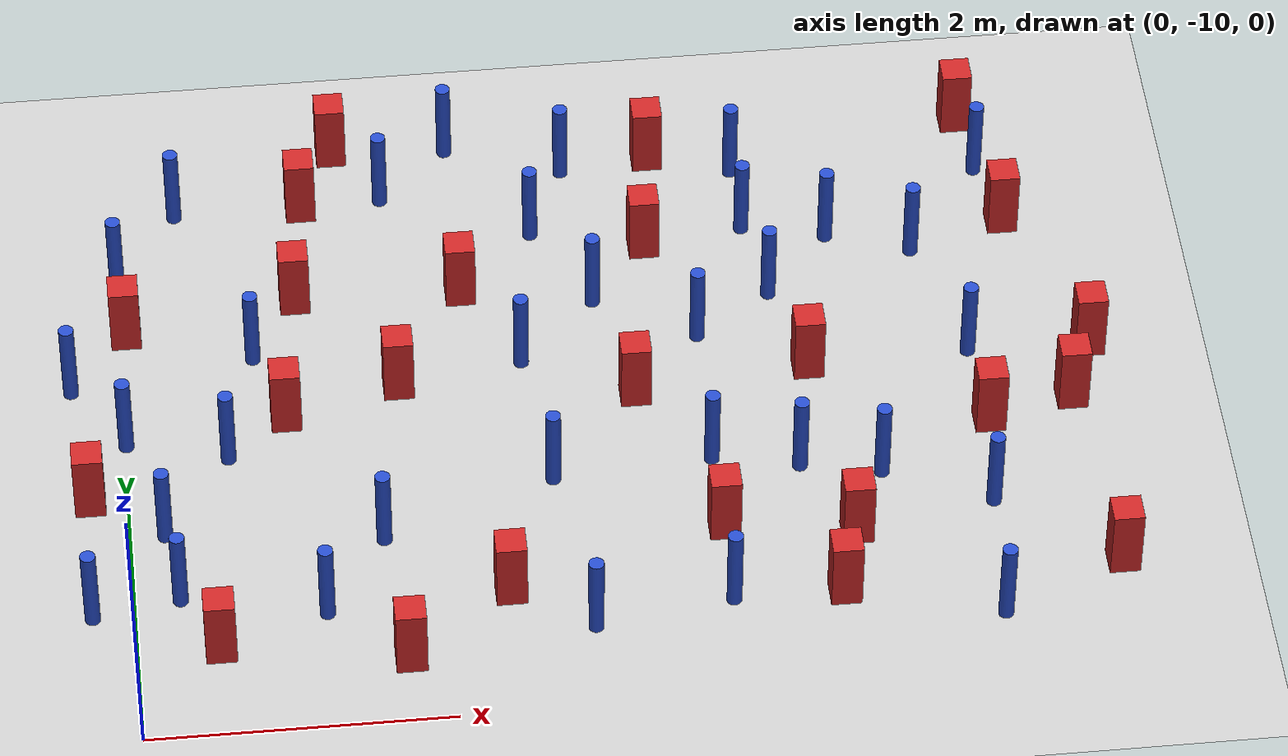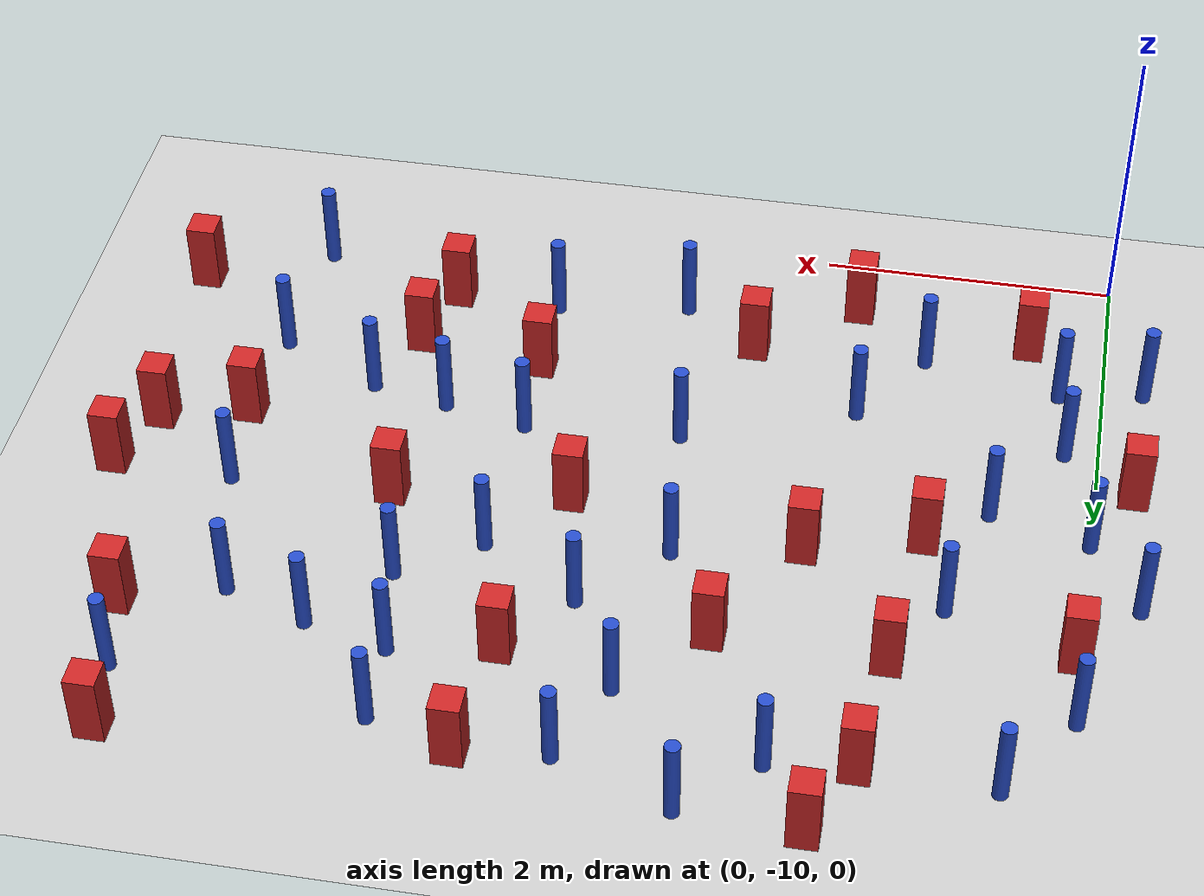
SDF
<sdf version="1.6">
 <world name="default">
  <model name="ground_plane">
   <static>1</static>
   <link name="link">
    <collision name="collision">
     <geometry><plane><normal>0 0 1</normal><size>100 100</size></plane></geometry>
     <surface><friction><ode><mu>100</mu><mu2>50</mu2></ode></friction></surface>
    </collision>
    <visual name="visual">
     <cast_shadows>0</cast_shadows>
     <geometry><plane><normal>0 0 1</normal><size>100 100</size></plane></geometry>
     <material>
      <ambient>1.0 1.0 1.0 1.0</ambient>
      <diffuse>0.8 0.8 0.8 1.0</diffuse>
      <specular>0.01 0.01 0.01 1.000000</specular>
     </material>
    </visual>
   </link>
  </model>
  <model name="pole_obstacle5">
   <static>true</static>
   <pose>-0.329985004801 -6.91863676255 7.38925637345e-09 -8.471706928e-08 1.24976765079e-08 -1.74513093015e-07</pose>
   <link name="link">
    <pose>0 0 0.3 0 -0 0</pose>
    <inertial>
     <mass>1</mass>
     <inertia><ixx>0.145833</ixx><ixy>0</ixy><ixz>0</ixz><iyy>0.145833</iyy><iyz>0</iyz><izz>0.125</izz></inertia>
    </inertial>
    <collision name="collision">
     <geometry><cylinder><radius>0.05</radius><length>.6</length></cylinder></geometry>
    </collision>
    <visual name="visual">
     <geometry><cylinder><radius>0.05</radius><length>.6</length></cylinder></geometry>
     <material>
      <script><name>Gazebo/Blue</name><uri>file://media/materials/scripts/gazebo.material</uri></script>
     </material>
    </visual>
   </link>
  </model>
  <model name="square_post_obstacle7">
   <static>true</static>
   <pose>1.20204457357 -6.22270453679 1.91545236811e-07 -7.35059704564e-06 1.12565212e-07 2.39332434364e-05</pose>
   <link name="link">
    <pose>0 0 0.25 0 -0 0</pose>
    <inertial>
     <mass>100</mass>
     <inertia>
      <ixx>0.166667</ixx>
      <ixy>0</ixy>
      <ixz>0</ixz>
      <iyy>0.166667</iyy>
      <iyz>0</iyz>
      <izz>0.166667</izz>
     </inertia>
    </inertial>
    <collision name="collision"><geometry><box><size>.2 .2 .5</size></box></geometry></collision>
    <visual name="visual">
     <geometry><box><size>.2 .2 .5</size></box></geometry>
     <material>
      <script><name>Gazebo/Red</name><uri>file://media/materials/scripts/gazebo.material</uri></script>
     </material>
    </visual>
   </link>
  </model>
  <model name="square_post_obstacle9">
   <static>true</static>
   <pose>6.26904442361 -7.61594210601 1.91545236811e-07 -7.35059704564e-06 1.12565212e-07 2.39332434364e-05</pose>
   <link name="link">
    <pose>0 0 0.25 0 -0 0</pose>
    <inertial>
     <mass>100</mass>
     <inertia>
      <ixx>0.166667</ixx>
      <ixy>0</ixy>
      <ixz>0</ixz>
      <iyy>0.166667</iyy>
      <iyz>0</iyz>
      <izz>0.166667</izz>
     </inertia>
    </inertial>
    <collision name="collision"><geometry><box><size>.2 .2 .5</size></box></geometry></collision>
    <visual name="visual">
     <geometry><box><size>.2 .2 .5</size></box></geometry>
     <material>
      <script><name>Gazebo/Red</name><uri>file://media/materials/scripts/gazebo.material</uri></script>
     </material>
    </visual>
   </link>
  </model>
  <model name="pole_obstacle15">
   <static>true</static>
   <pose>5.64696447669 -7.1184676006 7.38925637345e-09 -8.47170692796e-08 1.24976764786e-08 -1.74513093032e-07</pose>
   <link name="link">
    <pose>0 0 0.3 0 -0 0</pose>
    <inertial>
     <mass>1</mass>
     <inertia><ixx>0.145833</ixx><ixy>0</ixy><ixz>0</ixz><iyy>0.145833</iyy><iyz>0</iyz><izz>0.125</izz></inertia>
    </inertial>
    <collision name="collision">
     <geometry><cylinder><radius>0.05</radius><length>.6</length></cylinder></geometry>
    </collision>
    <visual name="visual">
     <geometry><cylinder><radius>0.05</radius><length>.6</length></cylinder></geometry>
     <material>
      <script><name>Gazebo/Blue</name><uri>file://media/materials/scripts/gazebo.material</uri></script>
     </material>
    </visual>
   </link>
  </model>
  <model name="square_post_obstacle25">
   <static>true</static>
   <pose>0.0576677048483 -6.43979260257 1.91545236811e-07 -7.35059704564e-06 1.12565212e-07 2.39332434364e-05</pose>
   <link name="link">
    <pose>0 0 0.25 0 -0 0</pose>
    <inertial>
     <mass>100</mass>
     <inertia>
      <ixx>0.166667</ixx>
      <ixy>0</ixy>
      <ixz>0</ixz>
      <iyy>0.166667</iyy>
      <iyz>0</iyz>
      <izz>0.166667</izz>
     </inertia>
    </inertial>
    <collision name="collision"><geometry><box><size>.2 .2 .5</size></box></geometry></collision>
    <visual name="visual">
     <geometry><box><size>.2 .2 .5</size></box></geometry>
     <material>
      <script><name>Gazebo/Red</name><uri>file://media/materials/scripts/gazebo.material</uri></script>
     </material>
    </visual>
   </link>
  </model>
  <model name="square_post_obstacle31">
   <static>true</static>
   <pose>5.69512726509 -7.77334676525 1.91545236811e-07 -7.35059704564e-06 1.12565212e-07 2.39332434364e-05</pose>
   <link name="link">
    <pose>0 0 0.25 0 -0 0</pose>
    <inertial>
     <mass>100</mass>
     <inertia>
      <ixx>0.166667</ixx>
      <ixy>0</ixy>
      <ixz>0</ixz>
      <iyy>0.166667</iyy>
      <iyz>0</iyz>
      <izz>0.166667</izz>
     </inertia>
    </inertial>
    <collision name="collision"><geometry><box><size>.2 .2 .5</size></box></geometry></collision>
    <visual name="visual">
     <geometry><box><size>.2 .2 .5</size></box></geometry>
     <material>
      <script><name>Gazebo/Red</name><uri>file://media/materials/scripts/gazebo.material</uri></script>
     </material>
    </visual>
   </link>
  </model>
  <model name="pole_obstacle24">
   <static>true</static>
   <pose>-0.273871435119 -8.94945067332 7.38925637345e-09 -8.47170692796e-08 1.24976764755e-08 -1.74513093035e-07</pose>
   <link name="link">
    <pose>0 0 0.3 0 -0 0</pose>
    <inertial>
     <mass>1</mass>
     <inertia><ixx>0.145833</ixx><ixy>0</ixy><ixz>0</ixz><iyy>0.145833</iyy><iyz>0</iyz><izz>0.125</izz></inertia>
    </inertial>
    <collision name="collision">
     <geometry><cylinder><radius>0.05</radius><length>.6</length></cylinder></geometry>
    </collision>
    <visual name="visual">
     <geometry><cylinder><radius>0.05</radius><length>.6</length></cylinder></geometry>
     <material>
      <script><name>Gazebo/Blue</name><uri>file://media/materials/scripts/gazebo.material</uri></script>
     </material>
    </visual>
   </link>
  </model>
  <model name="pole_obstacle29">
   <static>true</static>
   <pose>3.10378366037 -5.13386056649 7.38925637345e-09 -8.47170692798e-08 1.24976765033e-08 -1.74513093019e-07</pose>
   <link name="link">
    <pose>0 0 0.3 0 -0 0</pose>
    <inertial>
     <mass>1</mass>
     <inertia><ixx>0.145833</ixx><ixy>0</ixy><ixz>0</ixz><iyy>0.145833</iyy><iyz>0</iyz><izz>0.125</izz></inertia>
    </inertial>
    <collision name="collision">
     <geometry><cylinder><radius>0.05</radius><length>.6</length></cylinder></geometry>
    </collision>
    <visual name="visual">
     <geometry><cylinder><radius>0.05</radius><length>.6</length></cylinder></geometry>
     <material>
      <script><name>Gazebo/Blue</name><uri>file://media/materials/scripts/gazebo.material</uri></script>
     </material>
    </visual>
   </link>
  </model>
  <model name="pole_obstacle31">
   <static>true</static>
   <pose>3.83583463201 -9.18750019994 7.38925637345e-09 -8.47170692793e-08 1.24976764408e-08 -1.74513093041e-07</pose>
   <link name="link">
    <pose>0 0 0.3 0 -0 0</pose>
    <inertial>
     <mass>1</mass>
     <inertia><ixx>0.145833</ixx><ixy>0</ixy><ixz>0</ixz><iyy>0.145833</iyy><iyz>0</iyz><izz>0.125</izz></inertia>
    </inertial>
    <collision name="collision">
     <geometry><cylinder><radius>0.05</radius><length>.6</length></cylinder></geometry>
    </collision>
    <visual name="visual">
     <geometry><cylinder><radius>0.05</radius><length>.6</length></cylinder></geometry>
     <material>
      <script><name>Gazebo/Blue</name><uri>file://media/materials/scripts/gazebo.material</uri></script>
     </material>
    </visual>
   </link>
  </model>
  <model name="square_post_obstacle46">
   <static>true</static>
   <pose>2.41325094605 -8.98758294557 1.91545236811e-07 -7.35059704564e-06 1.12565212e-07 2.39332434364e-05</pose>
   <link name="link">
    <pose>0 0 0.25 0 -0 0</pose>
    <inertial>
     <mass>100</mass>
     <inertia>
      <ixx>0.166667</ixx>
      <ixy>0</ixy>
      <ixz>0</ixz>
      <iyy>0.166667</iyy>
      <iyz>0</iyz>
      <izz>0.166667</izz>
     </inertia>
    </inertial>
    <collision name="collision"><geometry><box><size>.2 .2 .5</size></box></geometry></collision>
    <visual name="visual">
     <geometry><box><size>.2 .2 .5</size></box></geometry>
     <material>
      <script><name>Gazebo/Red</name><uri>file://media/materials/scripts/gazebo.material</uri></script>
     </material>
    </visual>
   </link>
  </model>
  <model name="pole_obstacle49">
   <static>true</static>
   <pose>2.84003488901 -5.72315302195 7.38925637345e-09 -8.47170692798e-08 1.24976765033e-08 -1.74513093019e-07</pose>
   <link name="link">
    <pose>0 0 0.3 0 -0 0</pose>
    <inertial>
     <mass>1</mass>
     <inertia><ixx>0.145833</ixx><ixy>0</ixy><ixz>0</ixz><iyy>0.145833</iyy><iyz>0</iyz><izz>0.125</izz></inertia>
    </inertial>
    <collision name="collision">
     <geometry><cylinder><radius>0.05</radius><length>.6</length></cylinder></geometry>
    </collision>
    <visual name="visual">
     <geometry><cylinder><radius>0.05</radius><length>.6</length></cylinder></geometry>
     <material>
      <script><name>Gazebo/Blue</name><uri>file://media/materials/scripts/gazebo.material</uri></script>
     </material>
    </visual>
   </link>
  </model>
  <model name="square_post_obstacle49">
   <static>true</static>
   <pose>4.69538229254 -8.68048893193 1.91545236811e-07 -7.35059704564e-06 1.12565212e-07 2.39332434364e-05</pose>
   <link name="link">
    <pose>0 0 0.25 0 -0 0</pose>
    <inertial>
     <mass>100</mass>
     <inertia>
      <ixx>0.166667</ixx>
      <ixy>0</ixy>
      <ixz>0</ixz>
      <iyy>0.166667</iyy>
      <iyz>0</iyz>
      <izz>0.166667</izz>
     </inertia>
    </inertial>
    <collision name="collision"><geometry><box><size>.2 .2 .5</size></box></geometry></collision>
    <visual name="visual">
     <geometry><box><size>.2 .2 .5</size></box></geometry>
     <material>
      <script><name>Gazebo/Red</name><uri>file://media/materials/scripts/gazebo.material</uri></script>
     </material>
    </visual>
   </link>
  </model>
  <model name="square_post_obstacle50">
   <static>true</static>
   <pose>-0.245828015374 -7.94461244846 1.91545236811e-07 -7.35059704564e-06 1.12565212e-07 2.39332434364e-05</pose>
   <link name="link">
    <pose>0 0 0.25 0 -0 0</pose>
    <inertial>
     <mass>100</mass>
     <inertia>
      <ixx>0.166667</ixx>
      <ixy>0</ixy>
      <ixz>0</ixz>
      <iyy>0.166667</iyy>
      <iyz>0</iyz>
      <izz>0.166667</izz>
     </inertia>
    </inertial>
    <collision name="collision"><geometry><box><size>.2 .2 .5</size></box></geometry></collision>
    <visual name="visual">
     <geometry><box><size>.2 .2 .5</size></box></geometry>
     <material>
      <script><name>Gazebo/Red</name><uri>file://media/materials/scripts/gazebo.material</uri></script>
     </material>
    </visual>
   </link>
  </model>
  <model name="square_post_obstacle52">
   <static>true</static>
   <pose>1.29880366775 -5.33851155688 1.91545236811e-07 -7.35059704564e-06 1.12565212e-07 2.39332434364e-05</pose>
   <link name="link">
    <pose>0 0 0.25 0 -0 0</pose>
    <inertial>
     <mass>100</mass>
     <inertia>
      <ixx>0.166667</ixx>
      <ixy>0</ixy>
      <ixz>0</ixz>
      <iyy>0.166667</iyy>
      <iyz>0</iyz>
      <izz>0.166667</izz>
     </inertia>
    </inertial>
    <collision name="collision"><geometry><box><size>.2 .2 .5</size></box></geometry></collision>
    <visual name="visual">
     <geometry><box><size>.2 .2 .5</size></box></geometry>
     <material>
      <script><name>Gazebo/Red</name><uri>file://media/materials/scripts/gazebo.material</uri></script>
     </material>
    </visual>
   </link>
  </model>
  <model name="square_post_obstacle56">
   <static>true</static>
   <pose>1.72953078005 -9.49903256493 1.91545236811e-07 -7.35059704564e-06 1.12565212e-07 2.39332434364e-05</pose>
   <link name="link">
    <pose>0 0 0.25 0 -0 0</pose>
    <inertial>
     <mass>100</mass>
     <inertia>
      <ixx>0.166667</ixx>
      <ixy>0</ixy>
      <ixz>0</ixz>
      <iyy>0.166667</iyy>
      <iyz>0</iyz>
      <izz>0.166667</izz>
     </inertia>
    </inertial>
    <collision name="collision"><geometry><box><size>.2 .2 .5</size></box></geometry></collision>
    <visual name="visual">
     <geometry><box><size>.2 .2 .5</size></box></geometry>
     <material>
      <script><name>Gazebo/Red</name><uri>file://media/materials/scripts/gazebo.material</uri></script>
     </material>
    </visual>
   </link>
  </model>
  <model name="pole_obstacle53">
   <static>true</static>
   <pose>1.63896275881 -8.44346265958 7.38925637345e-09 -8.47170692798e-08 1.24976764881e-08 -1.74513093027e-07</pose>
   <link name="link">
    <pose>0 0 0.3 0 -0 0</pose>
    <inertial>
     <mass>1</mass>
     <inertia><ixx>0.145833</ixx><ixy>0</ixy><ixz>0</ixz><iyy>0.145833</iyy><iyz>0</iyz><izz>0.125</izz></inertia>
    </inertial>
    <collision name="collision">
     <geometry><cylinder><radius>0.05</radius><length>.6</length></cylinder></geometry>
    </collision>
    <visual name="visual">
     <geometry><cylinder><radius>0.05</radius><length>.6</length></cylinder></geometry>
     <material>
      <script><name>Gazebo/Blue</name><uri>file://media/materials/scripts/gazebo.material</uri></script>
     </material>
    </visual>
   </link>
  </model>
  <model name="pole_obstacle65">
   <static>true</static>
   <pose>4.27635296427 -5.80605625877 7.38925637345e-09 -8.47170692796e-08 1.24976764786e-08 -1.74513093032e-07</pose>
   <link name="link">
    <pose>0 0 0.3 0 -0 0</pose>
    <inertial>
     <mass>1</mass>
     <inertia><ixx>0.145833</ixx><ixy>0</ixy><ixz>0</ixz><iyy>0.145833</iyy><iyz>0</iyz><izz>0.125</izz></inertia>
    </inertial>
    <collision name="collision">
     <geometry><cylinder><radius>0.05</radius><length>.6</length></cylinder></geometry>
    </collision>
    <visual name="visual">
     <geometry><cylinder><radius>0.05</radius><length>.6</length></cylinder></geometry>
     <material>
      <script><name>Gazebo/Blue</name><uri>file://media/materials/scripts/gazebo.material</uri></script>
     </material>
    </visual>
   </link>
  </model>
  <model name="square_post_obstacle70">
   <static>true</static>
   <pose>5.86445608363 -4.89686274664 1.91545236811e-07 -7.35059704564e-06 1.12565212e-07 2.39332434364e-05</pose>
   <link name="link">
    <pose>0 0 0.25 0 -0 0</pose>
    <inertial>
     <mass>100</mass>
     <inertia>
      <ixx>0.166667</ixx>
      <ixy>0</ixy>
      <ixz>0</ixz>
      <iyy>0.166667</iyy>
      <iyz>0</iyz>
      <izz>0.166667</izz>
     </inertia>
    </inertial>
    <collision name="collision"><geometry><box><size>.2 .2 .5</size></box></geometry></collision>
    <visual name="visual">
     <geometry><box><size>.2 .2 .5</size></box></geometry>
     <material>
      <script><name>Gazebo/Red</name><uri>file://media/materials/scripts/gazebo.material</uri></script>
     </material>
    </visual>
   </link>
  </model>
  <model name="square_post_obstacle71">
   <static>true</static>
   <pose>0.530366621741 -9.30204461386 1.91545236811e-07 -7.35059704564e-06 1.12565212e-07 2.39332434364e-05</pose>
   <link name="link">
    <pose>0 0 0.25 0 -0 0</pose>
    <inertial>
     <mass>100</mass>
     <inertia>
      <ixx>0.166667</ixx>
      <ixy>0</ixy>
      <ixz>0</ixz>
      <iyy>0.166667</iyy>
      <iyz>0</iyz>
      <izz>0.166667</izz>
     </inertia>
    </inertial>
    <collision name="collision"><geometry><box><size>.2 .2 .5</size></box></geometry></collision>
    <visual name="visual">
     <geometry><box><size>.2 .2 .5</size></box></geometry>
     <material>
      <script><name>Gazebo/Red</name><uri>file://media/materials/scripts/gazebo.material</uri></script>
     </material>
    </visual>
   </link>
  </model>
  <model name="pole_obstacle68">
   <static>true</static>
   <pose>4.9284548698 -8.16663144554 7.38925637345e-09 -8.471706928e-08 1.24976765081e-08 -1.74513093015e-07</pose>
   <link name="link">
    <pose>0 0 0.3 0 -0 0</pose>
    <inertial>
     <mass>1</mass>
     <inertia><ixx>0.145833</ixx><ixy>0</ixy><ixz>0</ixz><iyy>0.145833</iyy><iyz>0</iyz><izz>0.125</izz></inertia>
    </inertial>
    <collision name="collision">
     <geometry><cylinder><radius>0.05</radius><length>.6</length></cylinder></geometry>
    </collision>
    <visual name="visual">
     <geometry><cylinder><radius>0.05</radius><length>.6</length></cylinder></geometry>
     <material>
      <script><name>Gazebo/Blue</name><uri>file://media/materials/scripts/gazebo.material</uri></script>
     </material>
    </visual>
   </link>
  </model>
  <model name="square_post_obstacle72">
   <static>true</static>
   <pose>3.84303024739 -8.55715499597 1.91545236811e-07 -7.35059704564e-06 1.12565212e-07 2.39332434364e-05</pose>
   <link name="link">
    <pose>0 0 0.25 0 -0 0</pose>
    <inertial>
     <mass>100</mass>
     <inertia>
      <ixx>0.166667</ixx>
      <ixy>0</ixy>
      <ixz>0</ixz>
      <iyy>0.166667</iyy>
      <iyz>0</iyz>
      <izz>0.166667</izz>
     </inertia>
    </inertial>
    <collision name="collision"><geometry><box><size>.2 .2 .5</size></box></geometry></collision>
    <visual name="visual">
     <geometry><box><size>.2 .2 .5</size></box></geometry>
     <material>
      <script><name>Gazebo/Red</name><uri>file://media/materials/scripts/gazebo.material</uri></script>
     </material>
    </visual>
   </link>
  </model>
  <model name="square_post_obstacle76">
   <static>true</static>
   <pose>4.56215583187 -7.16561337579 1.91545236811e-07 -7.35059704564e-06 1.12565212e-07 2.39332434364e-05</pose>
   <link name="link">
    <pose>0 0 0.25 0 -0 0</pose>
    <inertial>
     <mass>100</mass>
     <inertia>
      <ixx>0.166667</ixx>
      <ixy>0</ixy>
      <ixz>0</ixz>
      <iyy>0.166667</iyy>
      <iyz>0</iyz>
      <izz>0.166667</izz>
     </inertia>
    </inertial>
    <collision name="collision"><geometry><box><size>.2 .2 .5</size></box></geometry></collision>
    <visual name="visual">
     <geometry><box><size>.2 .2 .5</size></box></geometry>
     <material>
      <script><name>Gazebo/Red</name><uri>file://media/materials/scripts/gazebo.material</uri></script>
     </material>
    </visual>
   </link>
  </model>
  <model name="pole_obstacle75">
   <static>true</static>
   <pose>2.92998362112 -9.33271590838 7.38925637345e-09 -8.47170692793e-08 1.24976764408e-08 -1.74513093041e-07</pose>
   <link name="link">
    <pose>0 0 0.3 0 -0 0</pose>
    <inertial>
     <mass>1</mass>
     <inertia><ixx>0.145833</ixx><ixy>0</ixy><ixz>0</ixz><iyy>0.145833</iyy><iyz>0</iyz><izz>0.125</izz></inertia>
    </inertial>
    <collision name="collision">
     <geometry><cylinder><radius>0.05</radius><length>.6</length></cylinder></geometry>
    </collision>
    <visual name="visual">
     <geometry><cylinder><radius>0.05</radius><length>.6</length></cylinder></geometry>
     <material>
      <script><name>Gazebo/Blue</name><uri>file://media/materials/scripts/gazebo.material</uri></script>
     </material>
    </visual>
   </link>
  </model>
  <model name="pole_obstacle76">
   <static>true</static>
   <pose>2.32500341831 -4.85195918506 7.38925637345e-09 -8.47170692798e-08 1.24976765033e-08 -1.74513093019e-07</pose>
   <link name="link">
    <pose>0 0 0.3 0 -0 0</pose>
    <inertial>
     <mass>1</mass>
     <inertia><ixx>0.145833</ixx><ixy>0</ixy><ixz>0</ixz><iyy>0.145833</iyy><iyz>0</iyz><izz>0.125</izz></inertia>
    </inertial>
    <collision name="collision">
     <geometry><cylinder><radius>0.05</radius><length>.6</length></cylinder></geometry>
    </collision>
    <visual name="visual">
     <geometry><cylinder><radius>0.05</radius><length>.6</length></cylinder></geometry>
     <material>
      <script><name>Gazebo/Blue</name><uri>file://media/materials/scripts/gazebo.material</uri></script>
     </material>
    </visual>
   </link>
  </model>
  <model name="square_post_obstacle79">
   <static>true</static>
   <pose>1.83563852527 -7.08662530495 1.91545236811e-07 -7.35059704564e-06 1.12565212e-07 2.39332434364e-05</pose>
   <link name="link">
    <pose>0 0 0.25 0 -0 0</pose>
    <inertial>
     <mass>100</mass>
     <inertia>
      <ixx>0.166667</ixx>
      <ixy>0</ixy>
      <ixz>0</ixz>
      <iyy>0.166667</iyy>
      <iyz>0</iyz>
      <izz>0.166667</izz>
     </inertia>
    </inertial>
    <collision name="collision"><geometry><box><size>.2 .2 .5</size></box></geometry></collision>
    <visual name="visual">
     <geometry><box><size>.2 .2 .5</size></box></geometry>
     <material>
      <script><name>Gazebo/Red</name><uri>file://media/materials/scripts/gazebo.material</uri></script>
     </material>
    </visual>
   </link>
  </model>
  <model name="pole_obstacle83">
   <static>true</static>
   <pose>5.55596399803 -9.47737388124 7.38925637345e-09 -8.471706928e-08 1.24976765081e-08 -1.74513093015e-07</pose>
   <link name="link">
    <pose>0 0 0.3 0 -0 0</pose>
    <inertial>
     <mass>1</mass>
     <inertia><ixx>0.145833</ixx><ixy>0</ixy><ixz>0</ixz><iyy>0.145833</iyy><iyz>0</iyz><izz>0.125</izz></inertia>
    </inertial>
    <collision name="collision">
     <geometry><cylinder><radius>0.05</radius><length>.6</length></cylinder></geometry>
    </collision>
    <visual name="visual">
     <geometry><cylinder><radius>0.05</radius><length>.6</length></cylinder></geometry>
     <material>
      <script><name>Gazebo/Blue</name><uri>file://media/materials/scripts/gazebo.material</uri></script>
     </material>
    </visual>
   </link>
  </model>
  <model name="pole_obstacle89">
   <static>true</static>
   <pose>4.26461672808 -5.24369497312 7.38925637345e-09 -8.47170692796e-08 1.24976764786e-08 -1.74513093032e-07</pose>
   <link name="link">
    <pose>0 0 0.3 0 -0 0</pose>
    <inertial>
     <mass>1</mass>
     <inertia><ixx>0.145833</ixx><ixy>0</ixy><ixz>0</ixz><iyy>0.145833</iyy><iyz>0</iyz><izz>0.125</izz></inertia>
    </inertial>
    <collision name="collision">
     <geometry><cylinder><radius>0.05</radius><length>.6</length></cylinder></geometry>
    </collision>
    <visual name="visual">
     <geometry><cylinder><radius>0.05</radius><length>.6</length></cylinder></geometry>
     <material>
      <script><name>Gazebo/Blue</name><uri>file://media/materials/scripts/gazebo.material</uri></script>
     </material>
    </visual>
   </link>
  </model>
  <model name="pole_obstacle90">
   <static>true</static>
   <pose>2.78076976662 -8.01526828568 7.38925637345e-09 -8.47170692795e-08 1.24976764645e-08 -1.74513093041e-07</pose>
   <link name="link">
    <pose>0 0 0.3 0 -0 0</pose>
    <inertial>
     <mass>1</mass>
     <inertia><ixx>0.145833</ixx><ixy>0</ixy><ixz>0</ixz><iyy>0.145833</iyy><iyz>0</iyz><izz>0.125</izz></inertia>
    </inertial>
    <collision name="collision">
     <geometry><cylinder><radius>0.05</radius><length>.6</length></cylinder></geometry>
    </collision>
    <visual name="visual">
     <geometry><cylinder><radius>0.05</radius><length>.6</length></cylinder></geometry>
     <material>
      <script><name>Gazebo/Blue</name><uri>file://media/materials/scripts/gazebo.material</uri></script>
     </material>
    </visual>
   </link>
  </model>
  <model name="pole_obstacle91">
   <static>true</static>
   <pose>2.66965856004 -6.92775385965 7.38925637345e-09 -8.47170692798e-08 1.24976765033e-08 -1.74513093019e-07</pose>
   <link name="link">
    <pose>0 0 0.3 0 -0 0</pose>
    <inertial>
     <mass>1</mass>
     <inertia><ixx>0.145833</ixx><ixy>0</ixy><ixz>0</ixz><iyy>0.145833</iyy><iyz>0</iyz><izz>0.125</izz></inertia>
    </inertial>
    <collision name="collision">
     <geometry><cylinder><radius>0.05</radius><length>.6</length></cylinder></geometry>
    </collision>
    <visual name="visual">
     <geometry><cylinder><radius>0.05</radius><length>.6</length></cylinder></geometry>
     <material>
      <script><name>Gazebo/Blue</name><uri>file://media/materials/scripts/gazebo.material</uri></script>
     </material>
    </visual>
   </link>
  </model>
  <model name="pole_obstacle101">
   <static>true</static>
   <pose>4.38454330032 -6.45063516151 7.38925637345e-09 -8.47170692796e-08 1.24976764786e-08 -1.74513093032e-07</pose>
   <link name="link">
    <pose>0 0 0.3 0 -0 0</pose>
    <inertial>
     <mass>1</mass>
     <inertia><ixx>0.145833</ixx><ixy>0</ixy><ixz>0</ixz><iyy>0.145833</iyy><iyz>0</iyz><izz>0.125</izz></inertia>
    </inertial>
    <collision name="collision">
     <geometry><cylinder><radius>0.05</radius><length>.6</length></cylinder></geometry>
    </collision>
    <visual name="visual">
     <geometry><cylinder><radius>0.05</radius><length>.6</length></cylinder></geometry>
     <material>
      <script><name>Gazebo/Blue</name><uri>file://media/materials/scripts/gazebo.material</uri></script>
     </material>
    </visual>
   </link>
  </model>
  <model name="square_post_obstacle96">
   <static>true</static>
   <pose>6.04495599668 -5.92030933254 1.91545236811e-07 -7.35059704564e-06 1.12565212e-07 2.39332434364e-05</pose>
   <link name="link">
    <pose>0 0 0.25 0 -0 0</pose>
    <inertial>
     <mass>100</mass>
     <inertia>
      <ixx>0.166667</ixx>
      <ixy>0</ixy>
      <ixz>0</ixz>
      <iyy>0.166667</iyy>
      <iyz>0</iyz>
      <izz>0.166667</izz>
     </inertia>
    </inertial>
    <collision name="collision"><geometry><box><size>.2 .2 .5</size></box></geometry></collision>
    <visual name="visual">
     <geometry><box><size>.2 .2 .5</size></box></geometry>
     <material>
      <script><name>Gazebo/Red</name><uri>file://media/materials/scripts/gazebo.material</uri></script>
     </material>
    </visual>
   </link>
  </model>
  <model name="square_post_obstacle100">
   <static>true</static>
   <pose>6.37436220059 -9.10217160906 1.91545236811e-07 -7.35059704564e-06 1.12565212e-07 2.39332434364e-05</pose>
   <link name="link">
    <pose>0 0 0.25 0 -0 0</pose>
    <inertial>
     <mass>100</mass>
     <inertia>
      <ixx>0.166667</ixx>
      <ixy>0</ixy>
      <ixz>0</ixz>
      <iyy>0.166667</iyy>
      <iyz>0</iyz>
      <izz>0.166667</izz>
     </inertia>
    </inertial>
    <collision name="collision"><geometry><box><size>.2 .2 .5</size></box></geometry></collision>
    <visual name="visual">
     <geometry><box><size>.2 .2 .5</size></box></geometry>
     <material>
      <script><name>Gazebo/Red</name><uri>file://media/materials/scripts/gazebo.material</uri></script>
     </material>
    </visual>
   </link>
  </model>
  <model name="pole_obstacle116">
   <static>true</static>
   <pose>0.013070404356 -7.44449895063 7.38925637345e-09 -8.471706928e-08 1.24976765072e-08 -1.74513093018e-07</pose>
   <link name="link">
    <pose>0 0 0.3 0 -0 0</pose>
    <inertial>
     <mass>1</mass>
     <inertia><ixx>0.145833</ixx><ixy>0</ixy><ixz>0</ixz><iyy>0.145833</iyy><iyz>0</iyz><izz>0.125</izz></inertia>
    </inertial>
    <collision name="collision">
     <geometry><cylinder><radius>0.05</radius><length>.6</length></cylinder></geometry>
    </collision>
    <visual name="visual">
     <geometry><cylinder><radius>0.05</radius><length>.6</length></cylinder></geometry>
     <material>
      <script><name>Gazebo/Blue</name><uri>file://media/materials/scripts/gazebo.material</uri></script>
     </material>
    </visual>
   </link>
  </model>
  <model name="pole_obstacle122">
   <static>true</static>
   <pose>0.890338504709 -6.72194199462 7.38925637345e-09 -8.471706928e-08 1.24976765086e-08 -1.74513093015e-07</pose>
   <link name="link">
    <pose>0 0 0.3 0 -0 0</pose>
    <inertial>
     <mass>1</mass>
     <inertia><ixx>0.145833</ixx><ixy>0</ixy><ixz>0</ixz><iyy>0.145833</iyy><iyz>0</iyz><izz>0.125</izz></inertia>
    </inertial>
    <collision name="collision">
     <geometry><cylinder><radius>0.05</radius><length>.6</length></cylinder></geometry>
    </collision>
    <visual name="visual">
     <geometry><cylinder><radius>0.05</radius><length>.6</length></cylinder></geometry>
     <material>
      <script><name>Gazebo/Blue</name><uri>file://media/materials/scripts/gazebo.material</uri></script>
     </material>
    </visual>
   </link>
  </model>
  <model name="pole_obstacle130">
   <static>true</static>
   <pose>0.0213017383562 -5.92792434606 7.38925637345e-09 -8.471706928e-08 1.24976765089e-08 -1.74513093016e-07</pose>
   <link name="link">
    <pose>0 0 0.3 0 -0 0</pose>
    <inertial>
     <mass>1</mass>
     <inertia><ixx>0.145833</ixx><ixy>0</ixy><ixz>0</ixz><iyy>0.145833</iyy><iyz>0</iyz><izz>0.125</izz></inertia>
    </inertial>
    <collision name="collision">
     <geometry><cylinder><radius>0.05</radius><length>.6</length></cylinder></geometry>
    </collision>
    <visual name="visual">
     <geometry><cylinder><radius>0.05</radius><length>.6</length></cylinder></geometry>
     <material>
      <script><name>Gazebo/Blue</name><uri>file://media/materials/scripts/gazebo.material</uri></script>
     </material>
    </visual>
   </link>
  </model>
  <model name="square_post_obstacle115">
   <static>true</static>
   <pose>3.39233557937 -7.30319128317 1.91545236811e-07 -7.35059704564e-06 1.12565212e-07 2.39332434364e-05</pose>
   <link name="link">
    <pose>0 0 0.25 0 -0 0</pose>
    <inertial>
     <mass>100</mass>
     <inertia>
      <ixx>0.166667</ixx>
      <ixy>0</ixy>
      <ixz>0</ixz>
      <iyy>0.166667</iyy>
      <iyz>0</iyz>
      <izz>0.166667</izz>
     </inertia>
    </inertial>
    <collision name="collision"><geometry><box><size>.2 .2 .5</size></box></geometry></collision>
    <visual name="visual">
     <geometry><box><size>.2 .2 .5</size></box></geometry>
     <material>
      <script><name>Gazebo/Red</name><uri>file://media/materials/scripts/gazebo.material</uri></script>
     </material>
    </visual>
   </link>
  </model>
  <model name="pole_obstacle134">
   <static>true</static>
   <pose>5.62242702875 -8.49353111301 7.38925637345e-09 -8.471706928e-08 1.24976765081e-08 -1.74513093015e-07</pose>
   <link name="link">
    <pose>0 0 0.3 0 -0 0</pose>
    <inertial>
     <mass>1</mass>
     <inertia><ixx>0.145833</ixx><ixy>0</ixy><ixz>0</ixz><iyy>0.145833</iyy><iyz>0</iyz><izz>0.125</izz></inertia>
    </inertial>
    <collision name="collision">
     <geometry><cylinder><radius>0.05</radius><length>.6</length></cylinder></geometry>
    </collision>
    <visual name="visual">
     <geometry><cylinder><radius>0.05</radius><length>.6</length></cylinder></geometry>
     <material>
      <script><name>Gazebo/Blue</name><uri>file://media/materials/scripts/gazebo.material</uri></script>
     </material>
    </visual>
   </link>
  </model>
  <model name="pole_obstacle135">
   <static>true</static>
   <pose>4.83497234011 -5.94047757401 7.38925637345e-09 -8.47170692796e-08 1.24976764786e-08 -1.74513093032e-07</pose>
   <link name="link">
    <pose>0 0 0.3 0 -0 0</pose>
    <inertial>
     <mass>1</mass>
     <inertia><ixx>0.145833</ixx><ixy>0</ixy><ixz>0</ixz><iyy>0.145833</iyy><iyz>0</iyz><izz>0.125</izz></inertia>
    </inertial>
    <collision name="collision">
     <geometry><cylinder><radius>0.05</radius><length>.6</length></cylinder></geometry>
    </collision>
    <visual name="visual">
     <geometry><cylinder><radius>0.05</radius><length>.6</length></cylinder></geometry>
     <material>
      <script><name>Gazebo/Blue</name><uri>file://media/materials/scripts/gazebo.material</uri></script>
     </material>
    </visual>
   </link>
  </model>
  <model name="square_post_obstacle117">
   <static>true</static>
   <pose>6.45378339743 -7.14381427608 1.91545236811e-07 -7.35059704564e-06 1.12565212e-07 2.39332434364e-05</pose>
   <link name="link">
    <pose>0 0 0.25 0 -0 0</pose>
    <inertial>
     <mass>100</mass>
     <inertia>
      <ixx>0.166667</ixx>
      <ixy>0</ixy>
      <ixz>0</ixz>
      <iyy>0.166667</iyy>
      <iyz>0</iyz>
      <izz>0.166667</izz>
     </inertia>
    </inertial>
    <collision name="collision"><geometry><box><size>.2 .2 .5</size></box></geometry></collision>
    <visual name="visual">
     <geometry><box><size>.2 .2 .5</size></box></geometry>
     <material>
      <script><name>Gazebo/Red</name><uri>file://media/materials/scripts/gazebo.material</uri></script>
     </material>
    </visual>
   </link>
  </model>
  <model name="pole_obstacle143">
   <static>true</static>
   <pose>3.19757273252 -6.40617951348 7.38925637345e-09 -8.47170692798e-08 1.24976765033e-08 -1.74513093019e-07</pose>
   <link name="link">
    <pose>0 0 0.3 0 -0 0</pose>
    <inertial>
     <mass>1</mass>
     <inertia><ixx>0.145833</ixx><ixy>0</ixy><ixz>0</ixz><iyy>0.145833</iyy><iyz>0</iyz><izz>0.125</izz></inertia>
    </inertial>
    <collision name="collision">
     <geometry><cylinder><radius>0.05</radius><length>.6</length></cylinder></geometry>
    </collision>
    <visual name="visual">
     <geometry><cylinder><radius>0.05</radius><length>.6</length></cylinder></geometry>
     <material>
      <script><name>Gazebo/Blue</name><uri>file://media/materials/scripts/gazebo.material</uri></script>
     </material>
    </visual>
   </link>
  </model>
  <model name="square_post_obstacle137">
   <static>true</static>
   <pose>3.70144847904 -5.06778387256 1.91545236811e-07 -7.35059704564e-06 1.12565212e-07 2.39332434364e-05</pose>
   <link name="link">
    <pose>0 0 0.25 0 -0 0</pose>
    <inertial>
     <mass>100</mass>
     <inertia>
      <ixx>0.166667</ixx>
      <ixy>0</ixy>
      <ixz>0</ixz>
      <iyy>0.166667</iyy>
      <iyz>0</iyz>
      <izz>0.166667</izz>
     </inertia>
    </inertial>
    <collision name="collision"><geometry><box><size>.2 .2 .5</size></box></geometry></collision>
    <visual name="visual">
     <geometry><box><size>.2 .2 .5</size></box></geometry>
     <material>
      <script><name>Gazebo/Red</name><uri>file://media/materials/scripts/gazebo.material</uri></script>
     </material>
    </visual>
   </link>
  </model>
  <model name="pole_obstacle150">
   <static>true</static>
   <pose>0.675672171986 -7.62258322877 7.38925637345e-09 -8.471706928e-08 1.24976765086e-08 -1.74513093015e-07</pose>
   <link name="link">
    <pose>0 0 0.3 0 -0 0</pose>
    <inertial>
     <mass>1</mass>
     <inertia><ixx>0.145833</ixx><ixy>0</ixy><ixz>0</ixz><iyy>0.145833</iyy><iyz>0</iyz><izz>0.125</izz></inertia>
    </inertial>
    <collision name="collision">
     <geometry><cylinder><radius>0.05</radius><length>.6</length></cylinder></geometry>
    </collision>
    <visual name="visual">
     <geometry><cylinder><radius>0.05</radius><length>.6</length></cylinder></geometry>
     <material>
      <script><name>Gazebo/Blue</name><uri>file://media/materials/scripts/gazebo.material</uri></script>
     </material>
    </visual>
   </link>
  </model>
  <model name="square_post_obstacle146">
   <static>true</static>
   <pose>1.07501462161 -7.30822915322 1.91545236811e-07 -7.35059704564e-06 1.12565212e-07 2.39332434364e-05</pose>
   <link name="link">
    <pose>0 0 0.25 0 -0 0</pose>
    <inertial>
     <mass>100</mass>
     <inertia>
      <ixx>0.166667</ixx>
      <ixy>0</ixy>
      <ixz>0</ixz>
      <iyy>0.166667</iyy>
      <iyz>0</iyz>
      <izz>0.166667</izz>
     </inertia>
    </inertial>
    <collision name="collision"><geometry><box><size>.2 .2 .5</size></box></geometry></collision>
    <visual name="visual">
     <geometry><box><size>.2 .2 .5</size></box></geometry>
     <material>
      <script><name>Gazebo/Red</name><uri>file://media/materials/scripts/gazebo.material</uri></script>
     </material>
    </visual>
   </link>
  </model>
  <model name="pole_obstacle156">
   <static>true</static>
   <pose>0.225737036694 -8.27419777151 7.38925637345e-09 -8.47170692797e-08 1.24976764785e-08 -1.74513093032e-07</pose>
   <link name="link">
    <pose>0 0 0.3 0 -0 0</pose>
    <inertial>
     <mass>1</mass>
     <inertia><ixx>0.145833</ixx><ixy>0</ixy><ixz>0</ixz><iyy>0.145833</iyy><iyz>0</iyz><izz>0.125</izz></inertia>
    </inertial>
    <collision name="collision">
     <geometry><cylinder><radius>0.05</radius><length>.6</length></cylinder></geometry>
    </collision>
    <visual name="visual">
     <geometry><cylinder><radius>0.05</radius><length>.6</length></cylinder></geometry>
     <material>
      <script><name>Gazebo/Blue</name><uri>file://media/materials/scripts/gazebo.material</uri></script>
     </material>
    </visual>
   </link>
  </model>
  <model name="square_post_obstacle149">
   <static>true</static>
   <pose>3.59128795519 -5.92062263295 1.91545236811e-07 -7.35059704564e-06 1.12565212e-07 2.39332434364e-05</pose>
   <link name="link">
    <pose>0 0 0.25 0 -0 0</pose>
    <inertial>
     <mass>100</mass>
     <inertia>
      <ixx>0.166667</ixx>
      <ixy>0</ixy>
      <ixz>0</ixz>
      <iyy>0.166667</iyy>
      <iyz>0</iyz>
      <izz>0.166667</izz>
     </inertia>
    </inertial>
    <collision name="collision"><geometry><box><size>.2 .2 .5</size></box></geometry></collision>
    <visual name="visual">
     <geometry><box><size>.2 .2 .5</size></box></geometry>
     <material>
      <script><name>Gazebo/Red</name><uri>file://media/materials/scripts/gazebo.material</uri></script>
     </material>
    </visual>
   </link>
  </model>
  <model name="pole_obstacle162">
   <static>true</static>
   <pose>5.93467581601 -5.39273997921 7.38925637345e-09 -8.47170692796e-08 1.24976764786e-08 -1.74513093032e-07</pose>
   <link name="link">
    <pose>0 0 0.3 0 -0 0</pose>
    <inertial>
     <mass>1</mass>
     <inertia><ixx>0.145833</ixx><ixy>0</ixy><ixz>0</ixz><iyy>0.145833</iyy><iyz>0</iyz><izz>0.125</izz></inertia>
    </inertial>
    <collision name="collision">
     <geometry><cylinder><radius>0.05</radius><length>.6</length></cylinder></geometry>
    </collision>
    <visual name="visual">
     <geometry><cylinder><radius>0.05</radius><length>.6</length></cylinder></geometry>
     <material>
      <script><name>Gazebo/Blue</name><uri>file://media/materials/scripts/gazebo.material</uri></script>
     </material>
    </visual>
   </link>
  </model>
  <model name="square_post_obstacle155">
   <static>true</static>
   <pose>4.55045975666 -9.19895876246 1.91545236811e-07 -7.35059704564e-06 1.12565212e-07 2.39332434364e-05</pose>
   <link name="link">
    <pose>0 0 0.25 0 -0 0</pose>
    <inertial>
     <mass>100</mass>
     <inertia>
      <ixx>0.166667</ixx>
      <ixy>0</ixy>
      <ixz>0</ixz>
      <iyy>0.166667</iyy>
      <iyz>0</iyz>
      <izz>0.166667</izz>
     </inertia>
    </inertial>
    <collision name="collision"><geometry><box><size>.2 .2 .5</size></box></geometry></collision>
    <visual name="visual">
     <geometry><box><size>.2 .2 .5</size></box></geometry>
     <material>
      <script><name>Gazebo/Red</name><uri>file://media/materials/scripts/gazebo.material</uri></script>
     </material>
    </visual>
   </link>
  </model>
  <model name="square_post_obstacle156">
   <static>true</static>
   <pose>1.54196386779 -4.81337152478 1.91545236811e-07 -7.35059704564e-06 1.12565212e-07 2.39332434364e-05</pose>
   <link name="link">
    <pose>0 0 0.25 0 -0 0</pose>
    <inertial>
     <mass>100</mass>
     <inertia>
      <ixx>0.166667</ixx>
      <ixy>0</ixy>
      <ixz>0</ixz>
      <iyy>0.166667</iyy>
      <iyz>0</iyz>
      <izz>0.166667</izz>
     </inertia>
    </inertial>
    <collision name="collision"><geometry><box><size>.2 .2 .5</size></box></geometry></collision>
    <visual name="visual">
     <geometry><box><size>.2 .2 .5</size></box></geometry>
     <material>
      <script><name>Gazebo/Red</name><uri>file://media/materials/scripts/gazebo.material</uri></script>
     </material>
    </visual>
   </link>
  </model>
  <model name="square_post_obstacle160">
   <static>true</static>
   <pose>2.31703319854 -6.25029717936 1.91545236811e-07 -7.35059704564e-06 1.12565212e-07 2.39332434364e-05</pose>
   <link name="link">
    <pose>0 0 0.25 0 -0 0</pose>
    <inertial>
     <mass>100</mass>
     <inertia>
      <ixx>0.166667</ixx>
      <ixy>0</ixy>
      <ixz>0</ixz>
      <iyy>0.166667</iyy>
      <iyz>0</iyz>
      <izz>0.166667</izz>
     </inertia>
    </inertial>
    <collision name="collision"><geometry><box><size>.2 .2 .5</size></box></geometry></collision>
    <visual name="visual">
     <geometry><box><size>.2 .2 .5</size></box></geometry>
     <material>
      <script><name>Gazebo/Red</name><uri>file://media/materials/scripts/gazebo.material</uri></script>
     </material>
    </visual>
   </link>
  </model>
  <model name="pole_obstacle188">
   <static>true</static>
   <pose>5.39445631233 -6.13706197957 7.38925637345e-09 -8.47170692796e-08 1.24976764786e-08 -1.74513093032e-07</pose>
   <link name="link">
    <pose>0 0 0.3 0 -0 0</pose>
    <inertial>
     <mass>1</mass>
     <inertia><ixx>0.145833</ixx><ixy>0</ixy><ixz>0</ixz><iyy>0.145833</iyy><iyz>0</iyz><izz>0.125</izz></inertia>
    </inertial>
    <collision name="collision">
     <geometry><cylinder><radius>0.05</radius><length>.6</length></cylinder></geometry>
    </collision>
    <visual name="visual">
     <geometry><cylinder><radius>0.05</radius><length>.6</length></cylinder></geometry>
     <material>
      <script><name>Gazebo/Blue</name><uri>file://media/materials/scripts/gazebo.material</uri></script>
     </material>
    </visual>
   </link>
  </model>
  <model name="pole_obstacle217">
   <static>true</static>
   <pose>3.8335029329 -7.93562602535 7.38925637345e-09 -8.47170692798e-08 1.24976765033e-08 -1.74513093019e-07</pose>
   <link name="link">
    <pose>0 0 0.3 0 -0 0</pose>
    <inertial>
     <mass>1</mass>
     <inertia><ixx>0.145833</ixx><ixy>0</ixy><ixz>0</ixz><iyy>0.145833</iyy><iyz>0</iyz><izz>0.125</izz></inertia>
    </inertial>
    <collision name="collision">
     <geometry><cylinder><radius>0.05</radius><length>.6</length></cylinder></geometry>
    </collision>
    <visual name="visual">
     <geometry><cylinder><radius>0.05</radius><length>.6</length></cylinder></geometry>
     <material>
      <script><name>Gazebo/Blue</name><uri>file://media/materials/scripts/gazebo.material</uri></script>
     </material>
    </visual>
   </link>
  </model>
  <model name="pole_obstacle220">
   <static>true</static>
   <pose>1.22795675227 -9.04865444021 7.38925637345e-09 -8.47170692798e-08 1.24976764881e-08 -1.74513093027e-07</pose>
   <link name="link">
    <pose>0 0 0.3 0 -0 0</pose>
    <inertial>
     <mass>1</mass>
     <inertia><ixx>0.145833</ixx><ixy>0</ixy><ixz>0</ixz><iyy>0.145833</iyy><iyz>0</iyz><izz>0.125</izz></inertia>
    </inertial>
    <collision name="collision">
     <geometry><cylinder><radius>0.05</radius><length>.6</length></cylinder></geometry>
    </collision>
    <visual name="visual">
     <geometry><cylinder><radius>0.05</radius><length>.6</length></cylinder></geometry>
     <material>
      <script><name>Gazebo/Blue</name><uri>file://media/materials/scripts/gazebo.material</uri></script>
     </material>
    </visual>
   </link>
  </model>
  <model name="pole_obstacle221">
   <static>true</static>
   <pose>4.40173538309 -8.05568666524 7.38925637345e-09 -8.471706928e-08 1.24976765081e-08 -1.74513093015e-07</pose>
   <link name="link">
    <pose>0 0 0.3 0 -0 0</pose>
    <inertial>
     <mass>1</mass>
     <inertia><ixx>0.145833</ixx><ixy>0</ixy><ixz>0</ixz><iyy>0.145833</iyy><iyz>0</iyz><izz>0.125</izz></inertia>
    </inertial>
    <collision name="collision">
     <geometry><cylinder><radius>0.05</radius><length>.6</length></cylinder></geometry>
    </collision>
    <visual name="visual">
     <geometry><cylinder><radius>0.05</radius><length>.6</length></cylinder></geometry>
     <material>
      <script><name>Gazebo/Blue</name><uri>file://media/materials/scripts/gazebo.material</uri></script>
     </material>
    </visual>
   </link>
  </model>
  <model name="pole_obstacle222">
   <static>true</static>
   <pose>1.84737331487 -5.28949531455 7.38925637345e-09 -8.47170692799e-08 1.24976765033e-08 -1.74513093018e-07</pose>
   <link name="link">
    <pose>0 0 0.3 0 -0 0</pose>
    <inertial>
     <mass>1</mass>
     <inertia><ixx>0.145833</ixx><ixy>0</ixy><ixz>0</ixz><iyy>0.145833</iyy><iyz>0</iyz><izz>0.125</izz></inertia>
    </inertial>
    <collision name="collision">
     <geometry><cylinder><radius>0.05</radius><length>.6</length></cylinder></geometry>
    </collision>
    <visual name="visual">
     <geometry><cylinder><radius>0.05</radius><length>.6</length></cylinder></geometry>
     <material>
      <script><name>Gazebo/Blue</name><uri>file://media/materials/scripts/gazebo.material</uri></script>
     </material>
    </visual>
   </link>
  </model>
  <model name="pole_obstacle225">
   <static>true</static>
   <pose>3.86368000957 -6.80147997922 7.38925637345e-09 -8.47170692794e-08 1.24976764468e-08 -1.7451309304e-07</pose>
   <link name="link">
    <pose>0 0 0.3 0 -0 0</pose>
    <inertial>
     <mass>1</mass>
     <inertia><ixx>0.145833</ixx><ixy>0</ixy><ixz>0</ixz><iyy>0.145833</iyy><iyz>0</iyz><izz>0.125</izz></inertia>
    </inertial>
    <collision name="collision">
     <geometry><cylinder><radius>0.05</radius><length>.6</length></cylinder></geometry>
    </collision>
    <visual name="visual">
     <geometry><cylinder><radius>0.05</radius><length>.6</length></cylinder></geometry>
     <material>
      <script><name>Gazebo/Blue</name><uri>file://media/materials/scripts/gazebo.material</uri></script>
     </material>
    </visual>
   </link>
  </model>
  <model name="pole_obstacle227">
   <static>true</static>
   <pose>0.295576009575 -8.84526997922 7.38925637345e-09 -8.47170692795e-08 1.24976764691e-08 -1.74513093038e-07</pose>
   <link name="link">
    <pose>0 0 0.3 0 -0 0</pose>
    <inertial>
     <mass>1</mass>
     <inertia><ixx>0.145833</ixx><ixy>0</ixy><ixz>0</ixz><iyy>0.145833</iyy><iyz>0</iyz><izz>0.125</izz></inertia>
    </inertial>
    <collision name="collision">
     <geometry><cylinder><radius>0.05</radius><length>.6</length></cylinder></geometry>
    </collision>
    <visual name="visual">
     <geometry><cylinder><radius>0.05</radius><length>.6</length></cylinder></geometry>
     <material>
      <script><name>Gazebo/Blue</name><uri>file://media/materials/scripts/gazebo.material</uri></script>
     </material>
    </visual>
   </link>
  </model>
  <model name="pole_obstacle228">
   <static>true</static>
   <pose>0.437051009575 -5.31648997922 7.38925637345e-09 -8.47170692799e-08 1.2497676511e-08 -1.74513093014e-07</pose>
   <link name="link">
    <pose>0 0 0.3 0 -0 0</pose>
    <inertial>
     <mass>1</mass>
     <inertia><ixx>0.145833</ixx><ixy>0</ixy><ixz>0</ixz><iyy>0.145833</iyy><iyz>0</iyz><izz>0.125</izz></inertia>
    </inertial>
    <collision name="collision">
     <geometry><cylinder><radius>0.05</radius><length>.6</length></cylinder></geometry>
    </collision>
    <visual name="visual">
     <geometry><cylinder><radius>0.05</radius><length>.6</length></cylinder></geometry>
     <material>
      <script><name>Gazebo/Blue</name><uri>file://media/materials/scripts/gazebo.material</uri></script>
     </material>
    </visual>
   </link>
  </model>
 </world>
</sdf>
